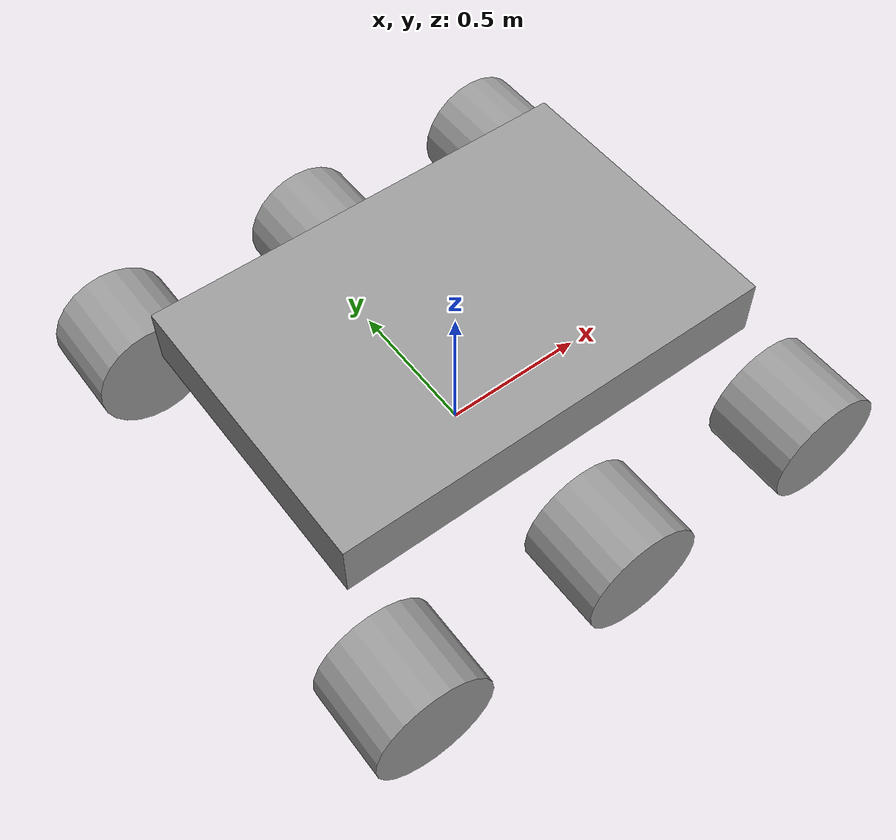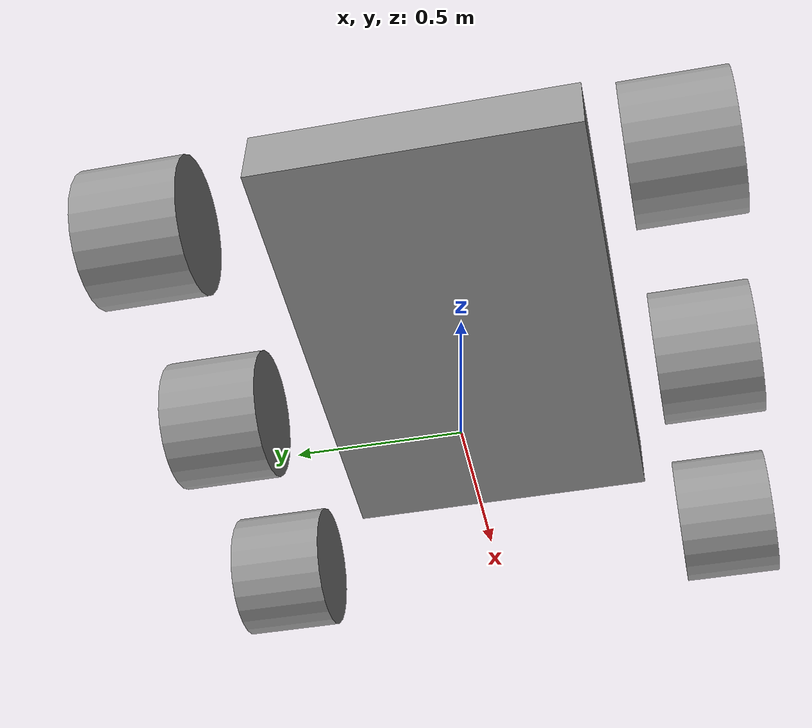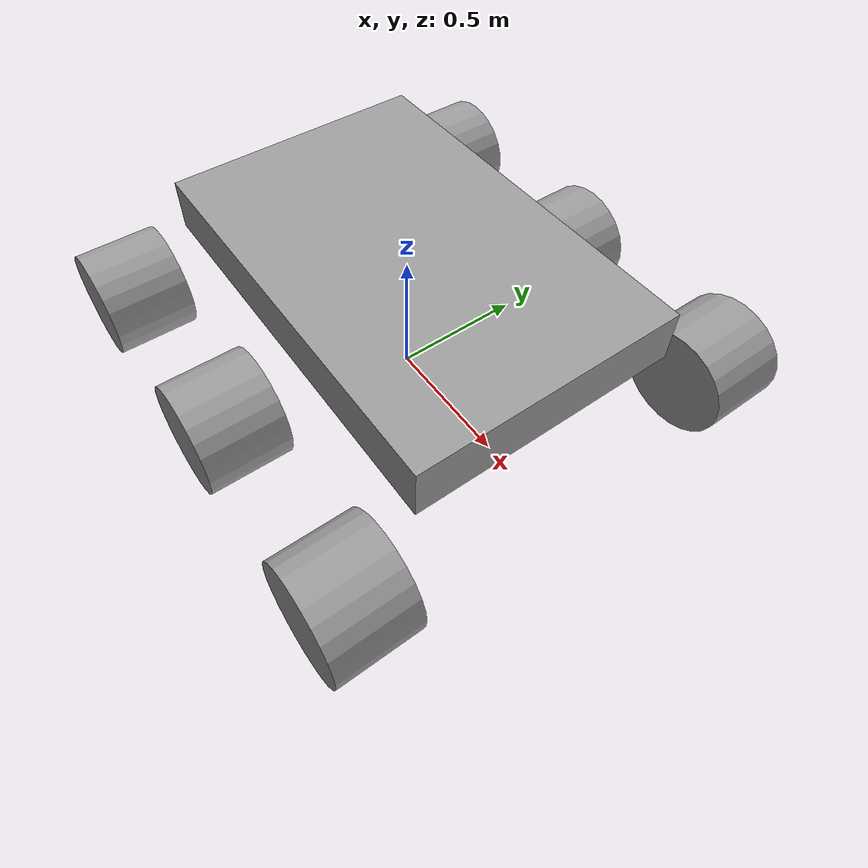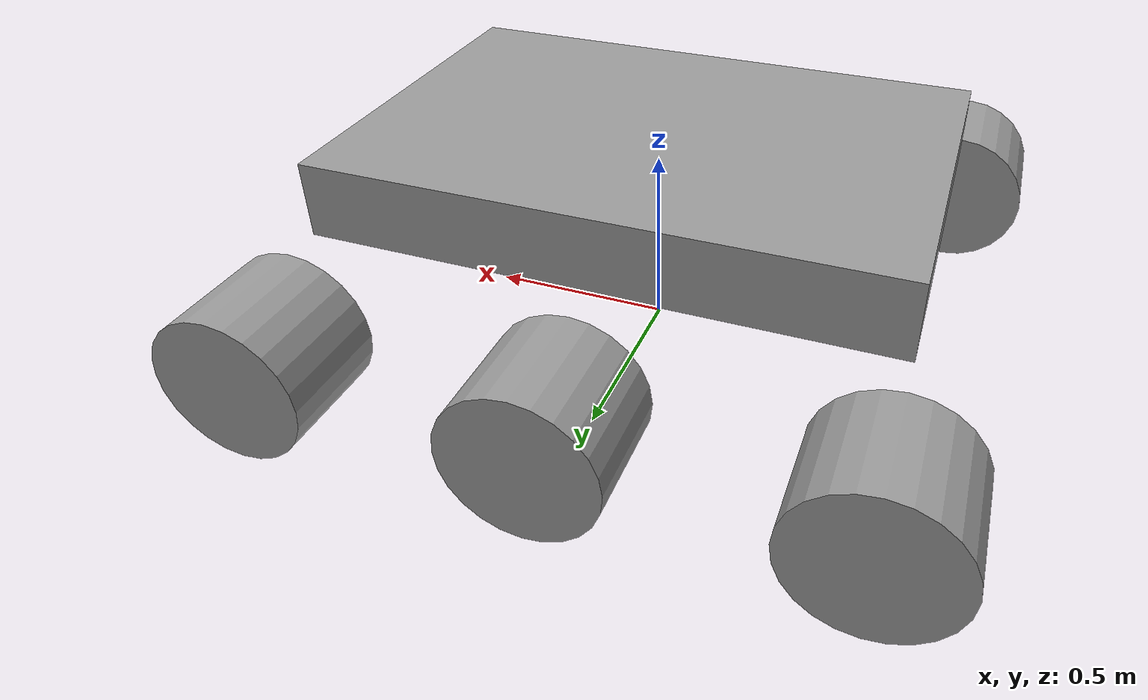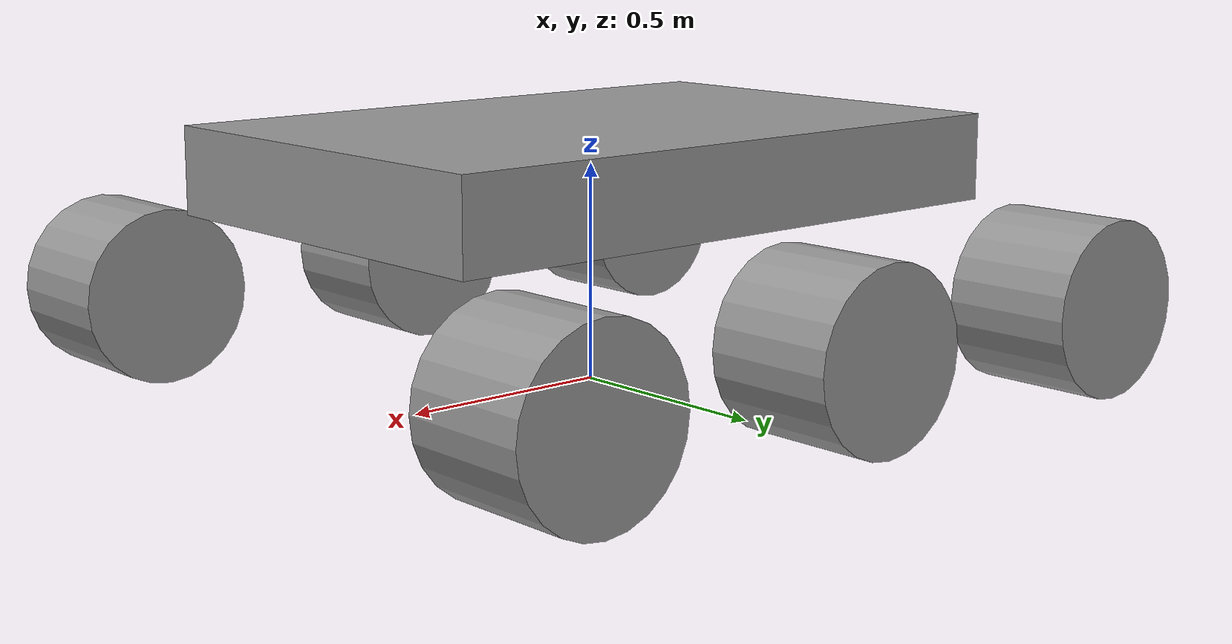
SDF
<?xml version='1.0'?>
<sdf version='1.6'>
  <model name='rover'>
    <link name='link_0'>
      <inertial>
        <mass>1</mass>
        <inertia>
          <ixx>0.166667</ixx>
          <ixy>0</ixy>
          <ixz>0</ixz>
          <iyy>0.166667</iyy>
          <iyz>0</iyz>
          <izz>0.166667</izz>
        </inertia>
        <pose frame=''>0 0 0 0 -0 0</pose>
      </inertial>
      <pose frame=''>0 0 0.5 0 -0 0</pose>
      <gravity>1</gravity>
      <self_collide>0</self_collide>
      <kinematic>0</kinematic>
      <enable_wind>0</enable_wind>
      <visual name='visual'>
        <pose frame=''>0 0 0 0 -0 0</pose>
        <geometry>
          <box>
            <size>1.5 1 0.2</size>
          </box>
        </geometry>
        <material>
          <lighting>1</lighting>
          <script>
            <uri>file://media/materials/scripts/gazebo.material</uri>
            <name>Gazebo/Grey</name>
          </script>
          <shader type='vertex'>
            <normal_map>__default__</normal_map>
          </shader>
          <ambient>0.3 0.3 0.3 1</ambient>
          <diffuse>0.7 0.7 0.7 1</diffuse>
          <specular>0.01 0.01 0.01 1</specular>
          <emissive>0 0 0 1</emissive>
        </material>
        <transparency>0</transparency>
        <cast_shadows>1</cast_shadows>
      </visual>
      <collision name='collision'>
        <laser_retro>0</laser_retro>
        <max_contacts>10</max_contacts>
        <pose frame=''>0 0 0 0 -0 0</pose>
        <geometry>
          <box>
            <size>1.5 1 0.2</size>
          </box>
        </geometry>
        <surface>
          <friction>
            <ode>
              <mu>1</mu>
              <mu2>1</mu2>
              <fdir1>0 0 0</fdir1>
              <slip1>0</slip1>
              <slip2>0</slip2>
            </ode>
            <torsional>
              <coefficient>1</coefficient>
              <patch_radius>0</patch_radius>
              <surface_radius>0</surface_radius>
              <use_patch_radius>1</use_patch_radius>
              <ode>
                <slip>0</slip>
              </ode>
            </torsional>
          </friction>
          <bounce>
            <restitution_coefficient>0</restitution_coefficient>
            <threshold>1e+06</threshold>
          </bounce>
          <contact>
            <collide_without_contact>0</collide_without_contact>
            <collide_without_contact_bitmask>1</collide_without_contact_bitmask>
            <collide_bitmask>1</collide_bitmask>
            <ode>
              <soft_cfm>0</soft_cfm>
              <soft_erp>0.2</soft_erp>
              <kp>1e+13</kp>
              <kd>1</kd>
              <max_vel>0.01</max_vel>
              <min_depth>0</min_depth>
            </ode>
            <bullet>
              <split_impulse>1</split_impulse>
              <split_impulse_penetration_threshold>-0.01</split_impulse_penetration_threshold>
              <soft_cfm>0</soft_cfm>
              <soft_erp>0.2</soft_erp>
              <kp>1e+13</kp>
              <kd>1</kd>
            </bullet>
          </contact>
        </surface>
      </collision>
    </link>
    <link name='link_0_0'>
      <inertial>
        <mass>1</mass>
        <inertia>
          <ixx>0.145833</ixx>
          <ixy>0</ixy>
          <ixz>0</ixz>
          <iyy>0.145833</iyy>
          <iyz>0</iyz>
          <izz>0.125</izz>
        </inertia>
        <pose frame=''>0 0 0 1.5708 -0 0</pose>
      </inertial>
      <pose frame=''>0 0 0 0 -0 0</pose>
      <gravity>1</gravity>
      <self_collide>0</self_collide>
      <kinematic>0</kinematic>
      <enable_wind>0</enable_wind>
      <visual name='visual'>
        <pose frame=''>0.75 -0.75 0.2 1.5708 -0 0</pose>
        <geometry>
          <cylinder>
            <radius>0.2</radius>
            <length>0.3</length>
          </cylinder>
        </geometry>
        <material>
          <lighting>1</lighting>
          <script>
            <uri>file://media/materials/scripts/gazebo.material</uri>
            <name>Gazebo/Grey</name>
          </script>
          <shader type='vertex'>
            <normal_map>__default__</normal_map>
          </shader>
          <ambient>0.3 0.3 0.3 1</ambient>
          <diffuse>0.7 0.7 0.7 1</diffuse>
          <specular>0.01 0.01 0.01 1</specular>
          <emissive>0 0 0 1</emissive>
        </material>
        <transparency>0</transparency>
        <cast_shadows>1</cast_shadows>
      </visual>
      <collision name='collision'>
        <laser_retro>0</laser_retro>
        <max_contacts>10</max_contacts>
        <pose frame=''>0.75 -0.75 0.2 1.5708 -0 0</pose>
        <geometry>
          <cylinder>
            <radius>0.2</radius>
            <length>0.3</length>
          </cylinder>
        </geometry>
        <surface>
          <friction>
            <ode>
              <mu>1</mu>
              <mu2>1</mu2>
              <fdir1>0 0 0</fdir1>
              <slip1>0</slip1>
              <slip2>0</slip2>
            </ode>
            <torsional>
              <coefficient>1</coefficient>
              <patch_radius>0</patch_radius>
              <surface_radius>0</surface_radius>
              <use_patch_radius>1</use_patch_radius>
              <ode>
                <slip>0</slip>
              </ode>
            </torsional>
          </friction>
          <bounce>
            <restitution_coefficient>0</restitution_coefficient>
            <threshold>1e+06</threshold>
          </bounce>
          <contact>
            <collide_without_contact>0</collide_without_contact>
            <collide_without_contact_bitmask>1</collide_without_contact_bitmask>
            <collide_bitmask>1</collide_bitmask>
            <ode>
              <soft_cfm>0</soft_cfm>
              <soft_erp>0.2</soft_erp>
              <kp>1e+13</kp>
              <kd>1</kd>
              <max_vel>0.01</max_vel>
              <min_depth>0</min_depth>
            </ode>
            <bullet>
              <split_impulse>1</split_impulse>
              <split_impulse_penetration_threshold>-0.01</split_impulse_penetration_threshold>
              <soft_cfm>0</soft_cfm>
              <soft_erp>0.2</soft_erp>
              <kp>1e+13</kp>
              <kd>1</kd>
            </bullet>
          </contact>
        </surface>
      </collision>
    </link>
    <link name='link_0_0_clone'>
      <inertial>
        <mass>1</mass>
        <inertia>
          <ixx>0.145833</ixx>
          <ixy>0</ixy>
          <ixz>0</ixz>
          <iyy>0.145833</iyy>
          <iyz>0</iyz>
          <izz>0.125</izz>
        </inertia>
        <pose frame=''>0 0 0 0 -0 0</pose>
      </inertial>
      <pose frame=''>0 0 0 0 -0 0</pose>
      <gravity>1</gravity>
      <self_collide>0</self_collide>
      <kinematic>0</kinematic>
      <enable_wind>0</enable_wind>
      <visual name='visual_0'>
        <pose frame=''>0 -0.75 0.2 1.5708 -0 0</pose>
        <geometry>
          <cylinder>
            <radius>0.2</radius>
            <length>0.3</length>
          </cylinder>
        </geometry>
        <material>
          <lighting>1</lighting>
          <script>
            <uri>file://media/materials/scripts/gazebo.material</uri>
            <name>Gazebo/Grey</name>
          </script>
          <shader type='vertex'>
            <normal_map>__default__</normal_map>
          </shader>
          <ambient>0.3 0.3 0.3 1</ambient>
          <diffuse>0.7 0.7 0.7 1</diffuse>
          <specular>0.01 0.01 0.01 1</specular>
          <emissive>0 0 0 1</emissive>
        </material>
        <transparency>0</transparency>
        <cast_shadows>1</cast_shadows>
      </visual>
      <collision name='collision'>
        <laser_retro>0</laser_retro>
        <max_contacts>10</max_contacts>
        <pose frame=''>0 -0.75 0.2 1.5708 -0 0</pose>
        <geometry>
          <cylinder>
            <radius>0.2</radius>
            <length>0.3</length>
          </cylinder>
        </geometry>
        <surface>
          <friction>
            <ode>
              <mu>1</mu>
              <mu2>1</mu2>
              <fdir1>0 0 0</fdir1>
              <slip1>0</slip1>
              <slip2>0</slip2>
            </ode>
            <torsional>
              <coefficient>1</coefficient>
              <patch_radius>0</patch_radius>
              <surface_radius>0</surface_radius>
              <use_patch_radius>1</use_patch_radius>
              <ode>
                <slip>0</slip>
              </ode>
            </torsional>
          </friction>
          <bounce>
            <restitution_coefficient>0</restitution_coefficient>
            <threshold>1e+06</threshold>
          </bounce>
          <contact>
            <collide_without_contact>0</collide_without_contact>
            <collide_without_contact_bitmask>1</collide_without_contact_bitmask>
            <collide_bitmask>1</collide_bitmask>
            <ode>
              <soft_cfm>0</soft_cfm>
              <soft_erp>0.2</soft_erp>
              <kp>1e+13</kp>
              <kd>1</kd>
              <max_vel>0.01</max_vel>
              <min_depth>0</min_depth>
            </ode>
            <bullet>
              <split_impulse>1</split_impulse>
              <split_impulse_penetration_threshold>-0.01</split_impulse_penetration_threshold>
              <soft_cfm>0</soft_cfm>
              <soft_erp>0.2</soft_erp>
              <kp>1e+13</kp>
              <kd>1</kd>
            </bullet>
          </contact>
        </surface>
      </collision>
    </link>
    <link name='link_0_0_clone_0'>
      <inertial>
        <mass>1</mass>
        <inertia>
          <ixx>0.145833</ixx>
          <ixy>0</ixy>
          <ixz>0</ixz>
          <iyy>0.145833</iyy>
          <iyz>0</iyz>
          <izz>0.125</izz>
        </inertia>
        <pose frame=''>0 0 0 0 -0 0</pose>
      </inertial>
      <pose frame=''>0 0 0 0 -0 0</pose>
      <gravity>1</gravity>
      <self_collide>0</self_collide>
      <kinematic>0</kinematic>
      <enable_wind>0</enable_wind>
      <visual name='visual_0'>
        <pose frame=''>0 0.75 0.2 1.5708 -0 0</pose>
        <geometry>
          <cylinder>
            <radius>0.2</radius>
            <length>0.3</length>
          </cylinder>
        </geometry>
        <material>
          <lighting>1</lighting>
          <script>
            <uri>file://media/materials/scripts/gazebo.material</uri>
            <name>Gazebo/Grey</name>
          </script>
          <shader type='vertex'>
            <normal_map>__default__</normal_map>
          </shader>
          <ambient>0.3 0.3 0.3 1</ambient>
          <diffuse>0.7 0.7 0.7 1</diffuse>
          <specular>0.01 0.01 0.01 1</specular>
          <emissive>0 0 0 1</emissive>
        </material>
        <transparency>0</transparency>
        <cast_shadows>1</cast_shadows>
      </visual>
      <collision name='collision'>
        <laser_retro>0</laser_retro>
        <max_contacts>10</max_contacts>
        <pose frame=''>0 0.75 0.2 1.5708 -0 0</pose>
        <geometry>
          <cylinder>
            <radius>0.2</radius>
            <length>0.3</length>
          </cylinder>
        </geometry>
        <surface>
          <friction>
            <ode>
              <mu>1</mu>
              <mu2>1</mu2>
              <fdir1>0 0 0</fdir1>
              <slip1>0</slip1>
              <slip2>0</slip2>
            </ode>
            <torsional>
              <coefficient>1</coefficient>
              <patch_radius>0</patch_radius>
              <surface_radius>0</surface_radius>
              <use_patch_radius>1</use_patch_radius>
              <ode>
                <slip>0</slip>
              </ode>
            </torsional>
          </friction>
          <bounce>
            <restitution_coefficient>0</restitution_coefficient>
            <threshold>1e+06</threshold>
          </bounce>
          <contact>
            <collide_without_contact>0</collide_without_contact>
            <collide_without_contact_bitmask>1</collide_without_contact_bitmask>
            <collide_bitmask>1</collide_bitmask>
            <ode>
              <soft_cfm>0</soft_cfm>
              <soft_erp>0.2</soft_erp>
              <kp>1e+13</kp>
              <kd>1</kd>
              <max_vel>0.01</max_vel>
              <min_depth>0</min_depth>
            </ode>
            <bullet>
              <split_impulse>1</split_impulse>
              <split_impulse_penetration_threshold>-0.01</split_impulse_penetration_threshold>
              <soft_cfm>0</soft_cfm>
              <soft_erp>0.2</soft_erp>
              <kp>1e+13</kp>
              <kd>1</kd>
            </bullet>
          </contact>
        </surface>
      </collision>
    </link>
    <link name='link_0_0_clone_1'>
      <inertial>
        <mass>1</mass>
        <inertia>
          <ixx>0.145833</ixx>
          <ixy>0</ixy>
          <ixz>0</ixz>
          <iyy>0.145833</iyy>
          <iyz>0</iyz>
          <izz>0.125</izz>
        </inertia>
        <pose frame=''>0 0 0 0 -0 0</pose>
      </inertial>
      <pose frame=''>0 0 0 0 -0 0</pose>
      <gravity>1</gravity>
      <self_collide>0</self_collide>
      <kinematic>0</kinematic>
      <enable_wind>0</enable_wind>
      <visual name='visual_0'>
        <pose frame=''>-0.75 0.75 0.2 1.5708 -0 0</pose>
        <geometry>
          <cylinder>
            <radius>0.2</radius>
            <length>0.3</length>
          </cylinder>
        </geometry>
        <material>
          <lighting>1</lighting>
          <script>
            <uri>file://media/materials/scripts/gazebo.material</uri>
            <name>Gazebo/Grey</name>
          </script>
          <shader type='vertex'>
            <normal_map>__default__</normal_map>
          </shader>
          <ambient>0.3 0.3 0.3 1</ambient>
          <diffuse>0.7 0.7 0.7 1</diffuse>
          <specular>0.01 0.01 0.01 1</specular>
          <emissive>0 0 0 1</emissive>
        </material>
        <transparency>0</transparency>
        <cast_shadows>1</cast_shadows>
      </visual>
      <collision name='collision'>
        <laser_retro>0</laser_retro>
        <max_contacts>10</max_contacts>
        <pose frame=''>-0.75 0.75 0.2 1.5708 -0 0</pose>
        <geometry>
          <cylinder>
            <radius>0.2</radius>
            <length>0.3</length>
          </cylinder>
        </geometry>
        <surface>
          <friction>
            <ode>
              <mu>1</mu>
              <mu2>1</mu2>
              <fdir1>0 0 0</fdir1>
              <slip1>0</slip1>
              <slip2>0</slip2>
            </ode>
            <torsional>
              <coefficient>1</coefficient>
              <patch_radius>0</patch_radius>
              <surface_radius>0</surface_radius>
              <use_patch_radius>1</use_patch_radius>
              <ode>
                <slip>0</slip>
              </ode>
            </torsional>
          </friction>
          <bounce>
            <restitution_coefficient>0</restitution_coefficient>
            <threshold>1e+06</threshold>
          </bounce>
          <contact>
            <collide_without_contact>0</collide_without_contact>
            <collide_without_contact_bitmask>1</collide_without_contact_bitmask>
            <collide_bitmask>1</collide_bitmask>
            <ode>
              <soft_cfm>0</soft_cfm>
              <soft_erp>0.2</soft_erp>
              <kp>1e+13</kp>
              <kd>1</kd>
              <max_vel>0.01</max_vel>
              <min_depth>0</min_depth>
            </ode>
            <bullet>
              <split_impulse>1</split_impulse>
              <split_impulse_penetration_threshold>-0.01</split_impulse_penetration_threshold>
              <soft_cfm>0</soft_cfm>
              <soft_erp>0.2</soft_erp>
              <kp>1e+13</kp>
              <kd>1</kd>
            </bullet>
          </contact>
        </surface>
      </collision>
    </link>
    <link name='link_0_0_clone_2'>
      <inertial>
        <mass>1</mass>
        <inertia>
          <ixx>0.145833</ixx>
          <ixy>0</ixy>
          <ixz>0</ixz>
          <iyy>0.145833</iyy>
          <iyz>0</iyz>
          <izz>0.125</izz>
        </inertia>
        <pose frame=''>0 0 0 0 -0 0</pose>
      </inertial>
      <pose frame=''>0 0 0 0 -0 0</pose>
      <gravity>1</gravity>
      <self_collide>0</self_collide>
      <kinematic>0</kinematic>
      <enable_wind>0</enable_wind>
      <visual name='visual_0'>
        <pose frame=''>0.75 0.75 0.2 1.5708 -0 0</pose>
        <geometry>
          <cylinder>
            <radius>0.2</radius>
            <length>0.3</length>
          </cylinder>
        </geometry>
        <material>
          <lighting>1</lighting>
          <script>
            <uri>file://media/materials/scripts/gazebo.material</uri>
            <name>Gazebo/Grey</name>
          </script>
          <shader type='vertex'>
            <normal_map>__default__</normal_map>
          </shader>
          <ambient>0.3 0.3 0.3 1</ambient>
          <diffuse>0.7 0.7 0.7 1</diffuse>
          <specular>0.01 0.01 0.01 1</specular>
          <emissive>0 0 0 1</emissive>
        </material>
        <transparency>0</transparency>
        <cast_shadows>1</cast_shadows>
      </visual>
      <collision name='collision'>
        <laser_retro>0</laser_retro>
        <max_contacts>10</max_contacts>
        <pose frame=''>0.75 0.75 0.2 1.5708 -0 0</pose>
        <geometry>
          <cylinder>
            <radius>0.2</radius>
            <length>0.3</length>
          </cylinder>
        </geometry>
        <surface>
          <friction>
            <ode>
              <mu>1</mu>
              <mu2>1</mu2>
              <fdir1>0 0 0</fdir1>
              <slip1>0</slip1>
              <slip2>0</slip2>
            </ode>
            <torsional>
              <coefficient>1</coefficient>
              <patch_radius>0</patch_radius>
              <surface_radius>0</surface_radius>
              <use_patch_radius>1</use_patch_radius>
              <ode>
                <slip>0</slip>
              </ode>
            </torsional>
          </friction>
          <bounce>
            <restitution_coefficient>0</restitution_coefficient>
            <threshold>1e+06</threshold>
          </bounce>
          <contact>
            <collide_without_contact>0</collide_without_contact>
            <collide_without_contact_bitmask>1</collide_without_contact_bitmask>
            <collide_bitmask>1</collide_bitmask>
            <ode>
              <soft_cfm>0</soft_cfm>
              <soft_erp>0.2</soft_erp>
              <kp>1e+13</kp>
              <kd>1</kd>
              <max_vel>0.01</max_vel>
              <min_depth>0</min_depth>
            </ode>
            <bullet>
              <split_impulse>1</split_impulse>
              <split_impulse_penetration_threshold>-0.01</split_impulse_penetration_threshold>
              <soft_cfm>0</soft_cfm>
              <soft_erp>0.2</soft_erp>
              <kp>1e+13</kp>
              <kd>1</kd>
            </bullet>
          </contact>
        </surface>
      </collision>
    </link>
    <link name='link_0_0_clone_3'>
      <inertial>
        <mass>1</mass>
        <inertia>
          <ixx>0.145833</ixx>
          <ixy>0</ixy>
          <ixz>0</ixz>
          <iyy>0.145833</iyy>
          <iyz>0</iyz>
          <izz>0.125</izz>
        </inertia>
        <pose frame=''>0 0 0 0 -0 0</pose>
      </inertial>
      <pose frame=''>0 0 0 0 -0 0</pose>
      <gravity>1</gravity>
      <self_collide>0</self_collide>
      <kinematic>0</kinematic>
      <enable_wind>0</enable_wind>
      <visual name='visual_0'>
        <pose frame=''>-0.75 -0.75 0.2 1.5708 -0 0</pose>
        <geometry>
          <cylinder>
            <radius>0.2</radius>
            <length>0.3</length>
          </cylinder>
        </geometry>
        <material>
          <lighting>1</lighting>
          <script>
            <uri>file://media/materials/scripts/gazebo.material</uri>
            <name>Gazebo/Grey</name>
          </script>
          <shader type='vertex'>
            <normal_map>__default__</normal_map>
          </shader>
          <ambient>0.3 0.3 0.3 1</ambient>
          <diffuse>0.7 0.7 0.7 1</diffuse>
          <specular>0.01 0.01 0.01 1</specular>
          <emissive>0 0 0 1</emissive>
        </material>
        <transparency>0</transparency>
        <cast_shadows>1</cast_shadows>
      </visual>
      <collision name='collision'>
        <laser_retro>0</laser_retro>
        <max_contacts>10</max_contacts>
        <pose frame=''>-0.75 -0.75 0.2 1.5708 -0 0</pose>
        <geometry>
          <cylinder>
            <radius>0.2</radius>
            <length>0.3</length>
          </cylinder>
        </geometry>
        <surface>
          <friction>
            <ode>
              <mu>1</mu>
              <mu2>1</mu2>
              <fdir1>0 0 0</fdir1>
              <slip1>0</slip1>
              <slip2>0</slip2>
            </ode>
            <torsional>
              <coefficient>1</coefficient>
              <patch_radius>0</patch_radius>
              <surface_radius>0</surface_radius>
              <use_patch_radius>1</use_patch_radius>
              <ode>
                <slip>0</slip>
              </ode>
            </torsional>
          </friction>
          <bounce>
            <restitution_coefficient>0</restitution_coefficient>
            <threshold>1e+06</threshold>
          </bounce>
          <contact>
            <collide_without_contact>0</collide_without_contact>
            <collide_without_contact_bitmask>1</collide_without_contact_bitmask>
            <collide_bitmask>1</collide_bitmask>
            <ode>
              <soft_cfm>0</soft_cfm>
              <soft_erp>0.2</soft_erp>
              <kp>1e+13</kp>
              <kd>1</kd>
              <max_vel>0.01</max_vel>
              <min_depth>0</min_depth>
            </ode>
            <bullet>
              <split_impulse>1</split_impulse>
              <split_impulse_penetration_threshold>-0.01</split_impulse_penetration_threshold>
              <soft_cfm>0</soft_cfm>
              <soft_erp>0.2</soft_erp>
              <kp>1e+13</kp>
              <kd>1</kd>
            </bullet>
          </contact>
        </surface>
      </collision>
    </link>
    <joint name='link_0_JOINT_0' type='revolute2'>
      <parent>link_0</parent>
      <child>link_0_0</child>
      <pose frame=''>0.75 -0.75 0.2 1.5708 -0 0</pose>
      <axis>
        <xyz>0 0 1</xyz>
        <use_parent_model_frame>0</use_parent_model_frame>
        <limit>
          <lower>-1.79769e+308</lower>
          <upper>1.79769e+308</upper>
          <effort>-1</effort>
          <velocity>-1</velocity>
        </limit>
        <dynamics>
          <spring_reference>0</spring_reference>
          <spring_stiffness>0</spring_stiffness>
          <damping>0</damping>
          <friction>0</friction>
        </dynamics>
      </axis>
      <axis2>
        <xyz>0 1 0</xyz>
        <use_parent_model_frame>0</use_parent_model_frame>
        <dynamics>
          <spring_reference>0</spring_reference>
          <spring_stiffness>0</spring_stiffness>
          <damping>0</damping>
          <friction>0</friction>
        </dynamics>
        <limit>
          <lower>-0.785398</lower>
          <upper>0.785398</upper>
          <effort>-1</effort>
          <velocity>-1</velocity>
        </limit>
      </axis2>
      <physics>
        <ode>
          <limit>
            <cfm>0</cfm>
            <erp>0.2</erp>
          </limit>
          <suspension>
            <cfm>0</cfm>
            <erp>0.2</erp>
          </suspension>
        </ode>
      </physics>
    </joint>
    <joint name='link_0_JOINT_1' type='revolute'>
      <parent>link_0</parent>
      <child>link_0_0_clone</child>
      <pose frame=''>0 -0.75 0.2 1.5708 -0 0</pose>
      <axis>
        <xyz>0 0 1</xyz>
        <use_parent_model_frame>0</use_parent_model_frame>
        <limit>
          <lower>-1.79769e+308</lower>
          <upper>1.79769e+308</upper>
          <effort>-1</effort>
          <velocity>-1</velocity>
        </limit>
        <dynamics>
          <spring_reference>0</spring_reference>
          <spring_stiffness>0</spring_stiffness>
          <damping>0</damping>
          <friction>0</friction>
        </dynamics>
      </axis>
      <physics>
        <ode>
          <limit>
            <cfm>0</cfm>
            <erp>0.2</erp>
          </limit>
          <suspension>
            <cfm>0</cfm>
            <erp>0.2</erp>
          </suspension>
        </ode>
      </physics>
    </joint>
    <joint name='link_0_JOINT_2' type='revolute'>
      <parent>link_0</parent>
      <child>link_0_0_clone_3</child>
      <pose frame=''>-0.75 -0.75 0.2 1.5708 -0 0</pose>
      <axis>
        <xyz>0 0 1</xyz>
        <use_parent_model_frame>0</use_parent_model_frame>
        <limit>
          <lower>-1.79769e+308</lower>
          <upper>1.79769e+308</upper>
          <effort>-1</effort>
          <velocity>-1</velocity>
        </limit>
        <dynamics>
          <spring_reference>0</spring_reference>
          <spring_stiffness>0</spring_stiffness>
          <damping>0</damping>
          <friction>0</friction>
        </dynamics>
      </axis>
      <physics>
        <ode>
          <limit>
            <cfm>0</cfm>
            <erp>0.2</erp>
          </limit>
          <suspension>
            <cfm>0</cfm>
            <erp>0.2</erp>
          </suspension>
        </ode>
      </physics>
    </joint>
    <joint name='link_0_JOINT_3' type='revolute2'>
      <parent>link_0</parent>
      <child>link_0_0_clone_2</child>
      <pose frame=''>0.75 0.75 0.2 1.5708 -0 0</pose>
      <axis>
        <xyz>0 1 0</xyz>
        <use_parent_model_frame>0</use_parent_model_frame>
        <limit>
          <lower>-1.79769e+308</lower>
          <upper>1.79769e+308</upper>
          <effort>-1</effort>
          <velocity>-1</velocity>
        </limit>
        <dynamics>
          <spring_reference>0</spring_reference>
          <spring_stiffness>0</spring_stiffness>
          <damping>0</damping>
          <friction>0</friction>
        </dynamics>
      </axis>
      <axis2>
        <xyz>0 0 1</xyz>
        <use_parent_model_frame>0</use_parent_model_frame>
        <dynamics>
          <spring_reference>0</spring_reference>
          <spring_stiffness>0</spring_stiffness>
          <damping>0</damping>
          <friction>0</friction>
        </dynamics>
        <limit>
          <lower>-0.785398</lower>
          <upper>0.785398</upper>
          <effort>-1</effort>
          <velocity>-1</velocity>
        </limit>
      </axis2>
      <physics>
        <ode>
          <limit>
            <cfm>0</cfm>
            <erp>0.2</erp>
          </limit>
          <suspension>
            <cfm>0</cfm>
            <erp>0.2</erp>
          </suspension>
        </ode>
      </physics>
    </joint>
    <joint name='link_0_JOINT_4' type='revolute'>
      <parent>link_0</parent>
      <child>link_0_0_clone_0</child>
      <pose frame=''>0 0.75 0.2 1.5708 -0 0</pose>
      <axis>
        <xyz>0 0 1</xyz>
        <use_parent_model_frame>0</use_parent_model_frame>
        <limit>
          <lower>-1.79769e+308</lower>
          <upper>1.79769e+308</upper>
          <effort>-1</effort>
          <velocity>-1</velocity>
        </limit>
        <dynamics>
          <spring_reference>0</spring_reference>
          <spring_stiffness>0</spring_stiffness>
          <damping>0</damping>
          <friction>0</friction>
        </dynamics>
      </axis>
      <physics>
        <ode>
          <limit>
            <cfm>0</cfm>
            <erp>0.2</erp>
          </limit>
          <suspension>
            <cfm>0</cfm>
            <erp>0.2</erp>
          </suspension>
        </ode>
      </physics>
    </joint>
    <joint name='link_0_JOINT_5' type='revolute'>
      <parent>link_0</parent>
      <child>link_0_0_clone_1</child>
      <pose frame=''>-0.75 0.75 0.2 1.5708 -0 0</pose>
      <axis>
        <xyz>0 0 1</xyz>
        <use_parent_model_frame>0</use_parent_model_frame>
        <limit>
          <lower>-1.79769e+308</lower>
          <upper>1.79769e+308</upper>
          <effort>-1</effort>
          <velocity>-1</velocity>
        </limit>
        <dynamics>
          <spring_reference>0</spring_reference>
          <spring_stiffness>0</spring_stiffness>
          <damping>0</damping>
          <friction>0</friction>
        </dynamics>
      </axis>
      <physics>
        <ode>
          <limit>
            <cfm>0</cfm>
            <erp>0.2</erp>
          </limit>
          <suspension>
            <cfm>0</cfm>
            <erp>0.2</erp>
          </suspension>
        </ode>
      </physics>
    </joint>
    <static>0</static>
    <allow_auto_disable>1</allow_auto_disable>
  </model>
</sdf>
